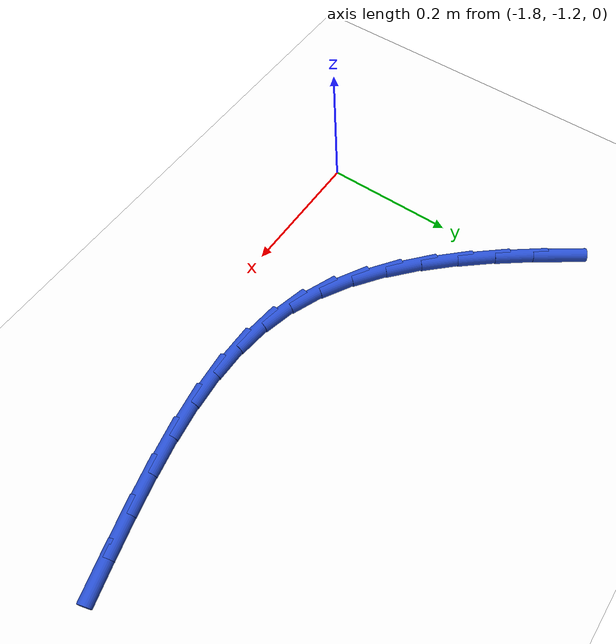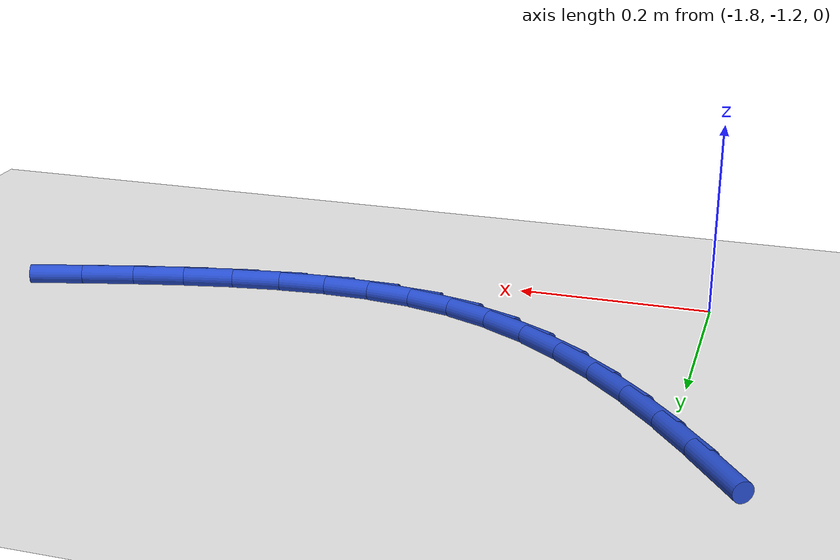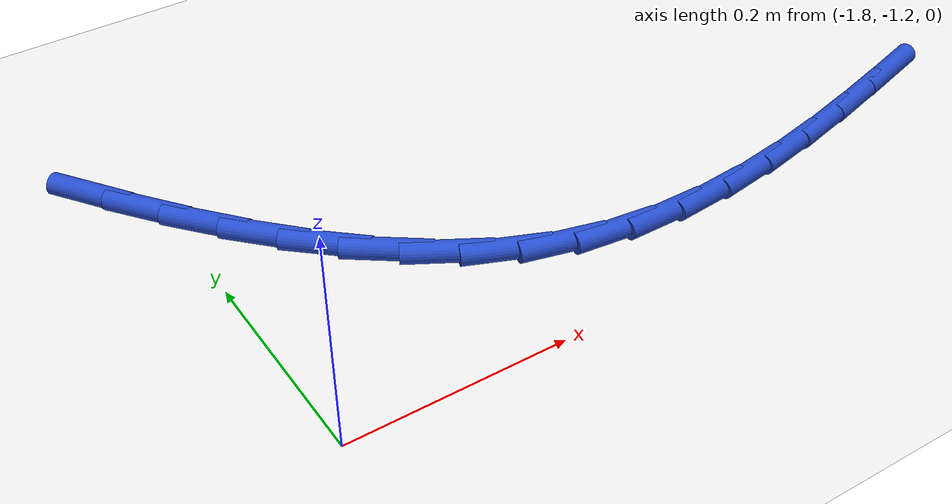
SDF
<sdf version="1.6">
 <world name="default">
  <model name="ground_plane">
   <static>1</static>
   <link name="link">
    <collision name="collision">
     <geometry><plane><normal>0 0 1</normal><size>100 100</size></plane></geometry>
     <surface><friction><ode><mu>100</mu><mu2>50</mu2></ode></friction></surface>
    </collision>
    <visual name="visual">
     <cast_shadows>0</cast_shadows>
     <geometry><plane><normal>0 0 1</normal><size>100 100</size></plane></geometry>
     <material>
      <script><uri>file://media/materials/scripts/gazebo.material</uri><name>Gazebo/WhiteGlow</name></script>
     </material>
    </visual>
   </link>
  </model>
  <model name="line">
   <link name="link_82">
    <pose>-1.8465462729756434 -0.8279881213307599 0.01 0 1.57 -0.957937938262768</pose>
    <collision name="collision">
     <geometry><cylinder><radius>0.01</radius><length>0.08</length></cylinder></geometry>
    </collision>
    <visual name="visual">
     <material>
      <script><name>Gazebo/Blue</name><uri>file://media/materials/scripts/gazebo.material</uri></script>
     </material>
     <geometry><cylinder><radius>0.01</radius><length>0.08</length></cylinder></geometry>
    </visual>
   </link>
   <link name="link_83">
    <pose>-1.8137741454948604 -0.8745935867354402 0.01 0 1.57 -0.9207460001626756</pose>
    <collision name="collision">
     <geometry><cylinder><radius>0.01</radius><length>0.08</length></cylinder></geometry>
    </collision>
    <visual name="visual">
     <material>
      <script><name>Gazebo/Blue</name><uri>file://media/materials/scripts/gazebo.material</uri></script>
     </material>
     <geometry><cylinder><radius>0.01</radius><length>0.08</length></cylinder></geometry>
    </visual>
   </link>
   <link name="link_84">
    <pose>-1.7796554171382604 -0.9194698918316423 0.01 0 1.57 -0.8724478778512785</pose>
    <collision name="collision">
     <geometry><cylinder><radius>0.01</radius><length>0.08</length></cylinder></geometry>
    </collision>
    <visual name="visual">
     <material>
      <script><name>Gazebo/Blue</name><uri>file://media/materials/scripts/gazebo.material</uri></script>
     </material>
     <geometry><cylinder><radius>0.01</radius><length>0.08</length></cylinder></geometry>
    </visual>
   </link>
   <link name="link_85">
    <pose>-1.744068211446589 -0.9618624081768655 0.01 0 1.57 -0.8112864791906483</pose>
    <collision name="collision">
     <geometry><cylinder><radius>0.01</radius><length>0.08</length></cylinder></geometry>
    </collision>
    <visual name="visual">
     <material>
      <script><name>Gazebo/Blue</name><uri>file://media/materials/scripts/gazebo.material</uri></script>
     </material>
     <geometry><cylinder><radius>0.01</radius><length>0.08</length></cylinder></geometry>
    </visual>
   </link>
   <link name="link_86">
    <pose>-1.706890651960594 -1.0010165073286097 0.01 0 1.57 -0.7350869252770326</pose>
    <collision name="collision">
     <geometry><cylinder><radius>0.01</radius><length>0.08</length></cylinder></geometry>
    </collision>
    <visual name="visual">
     <material>
      <script><name>Gazebo/Blue</name><uri>file://media/materials/scripts/gazebo.material</uri></script>
     </material>
     <geometry><cylinder><radius>0.01</radius><length>0.08</length></cylinder></geometry>
    </visual>
   </link>
   <link name="link_87">
    <pose>-1.6680008622210225 -1.0361775608443726 0.01 0 1.57 -0.6414621554277193</pose>
    <collision name="collision">
     <geometry><cylinder><radius>0.01</radius><length>0.08</length></cylinder></geometry>
    </collision>
    <visual name="visual">
     <material>
      <script><name>Gazebo/Blue</name><uri>file://media/materials/scripts/gazebo.material</uri></script>
     </material>
     <geometry><cylinder><radius>0.01</radius><length>0.08</length></cylinder></geometry>
    </visual>
   </link>
   <link name="link_88">
    <pose>-1.6272769657686212 -1.066590940281654 0.01 0 1.57 -0.5283275532842482</pose>
    <collision name="collision">
     <geometry><cylinder><radius>0.01</radius><length>0.08</length></cylinder></geometry>
    </collision>
    <visual name="visual">
     <material>
      <script><name>Gazebo/Blue</name><uri>file://media/materials/scripts/gazebo.material</uri></script>
     </material>
     <geometry><cylinder><radius>0.01</radius><length>0.08</length></cylinder></geometry>
    </visual>
   </link>
   <link name="link_89">
    <pose>-1.5845970861441372 -1.0915020171979526 0.01 0 1.57 -0.39488797674293097</pose>
    <collision name="collision">
     <geometry><cylinder><radius>0.01</radius><length>0.08</length></cylinder></geometry>
    </collision>
    <visual name="visual">
     <material>
      <script><name>Gazebo/Blue</name><uri>file://media/materials/scripts/gazebo.material</uri></script>
     </material>
     <geometry><cylinder><radius>0.01</radius><length>0.08</length></cylinder></geometry>
    </visual>
   </link>
   <link name="link_90">
    <pose>-1.5398393468883182 -1.110156163150768 0.01 0 1.57 -0.24721091557709568</pose>
    <collision name="collision">
     <geometry><cylinder><radius>0.01</radius><length>0.08</length></cylinder></geometry>
    </collision>
    <visual name="visual">
     <material>
      <script><name>Gazebo/Blue</name><uri>file://media/materials/scripts/gazebo.material</uri></script>
     </material>
     <geometry><cylinder><radius>0.01</radius><length>0.08</length></cylinder></geometry>
    </visual>
   </link>
   <link name="link_91">
    <pose>-1.4929321944811074 -1.121994266452133 0.01 0 1.57 -0.11207397488660953</pose>
    <collision name="collision">
     <geometry><cylinder><radius>0.01</radius><length>0.08</length></cylinder></geometry>
    </collision>
    <visual name="visual">
     <material>
      <script><name>Gazebo/Blue</name><uri>file://media/materials/scripts/gazebo.material</uri></script>
     </material>
     <geometry><cylinder><radius>0.01</radius><length>0.08</length></cylinder></geometry>
    </visual>
   </link>
   <link name="link_92">
    <pose>-1.4440707739235112 -1.1274934034847228 0.01 0 1.57 0.0004113945215312366</pose>
    <collision name="collision">
     <geometry><cylinder><radius>0.01</radius><length>0.08</length></cylinder></geometry>
    </collision>
    <visual name="visual">
     <material>
      <script><name>Gazebo/Blue</name><uri>file://media/materials/scripts/gazebo.material</uri></script>
     </material>
     <geometry><cylinder><radius>0.01</radius><length>0.08</length></cylinder></geometry>
    </visual>
   </link>
   <link name="link_93">
    <pose>-1.393538246386829 -1.1274726146785623 0.01 0 1.57 0.09068706974945738</pose>
    <collision name="collision">
     <geometry><cylinder><radius>0.01</radius><length>0.08</length></cylinder></geometry>
    </collision>
    <visual name="visual">
     <material>
      <script><name>Gazebo/Blue</name><uri>file://media/materials/scripts/gazebo.material</uri></script>
     </material>
     <geometry><cylinder><radius>0.01</radius><length>0.08</length></cylinder></geometry>
    </visual>
   </link>
   <link name="link_94">
    <pose>-1.3416178279102167 -1.1227511536385342 0.01 0 1.57 0.16084020968265966</pose>
    <collision name="collision">
     <geometry><cylinder><radius>0.01</radius><length>0.08</length></cylinder></geometry>
    </collision>
    <visual name="visual">
     <material>
      <script><name>Gazebo/Blue</name><uri>file://media/materials/scripts/gazebo.material</uri></script>
     </material>
     <geometry><cylinder><radius>0.01</radius><length>0.08</length></cylinder></geometry>
    </visual>
   </link>
   <link name="link_95">
    <pose>-1.2885927345328343 -1.114148273969523 0.01 0 1.57 0.2133383393055978</pose>
    <collision name="collision">
     <geometry><cylinder><radius>0.01</radius><length>0.08</length></cylinder></geometry>
    </collision>
    <visual name="visual">
     <material>
      <script><name>Gazebo/Blue</name><uri>file://media/materials/scripts/gazebo.material</uri></script>
     </material>
     <geometry><cylinder><radius>0.01</radius><length>0.08</length></cylinder></geometry>
    </visual>
   </link>
   <link name="link_96">
    <pose>-1.234746182293838 -1.102483229276411 0.01 0 1.57 0.2503665773630566</pose>
    <collision name="collision">
     <geometry><cylinder><radius>0.01</radius><length>0.08</length></cylinder></geometry>
    </collision>
    <visual name="visual">
     <material>
      <script><name>Gazebo/Blue</name><uri>file://media/materials/scripts/gazebo.material</uri></script>
     </material>
     <geometry><cylinder><radius>0.01</radius><length>0.08</length></cylinder></geometry>
    </visual>
   </link>
   <link name="link_97">
    <pose>-1.180361387232385 -1.088575273164082 0.01 0 1.57 0.2735595657030936</pose>
    <collision name="collision">
     <geometry><cylinder><radius>0.01</radius><length>0.08</length></cylinder></geometry>
    </collision>
    <visual name="visual">
     <material>
      <script><name>Gazebo/Blue</name><uri>file://media/materials/scripts/gazebo.material</uri></script>
     </material>
     <geometry><cylinder><radius>0.01</radius><length>0.08</length></cylinder></geometry>
    </visual>
   </link>
   <link name="link_98">
    <pose>-1.125721565387633 -1.0732436592374186 0.01 0 1.57 0.283922785283939</pose>
    <collision name="collision">
     <geometry><cylinder><radius>0.01</radius><length>0.08</length></cylinder></geometry>
    </collision>
    <visual name="visual">
     <material>
      <script><name>Gazebo/Blue</name><uri>file://media/materials/scripts/gazebo.material</uri></script>
     </material>
     <geometry><cylinder><radius>0.01</radius><length>0.08</length></cylinder></geometry>
    </visual>
   </link>
  </model>
 </world>
</sdf>
